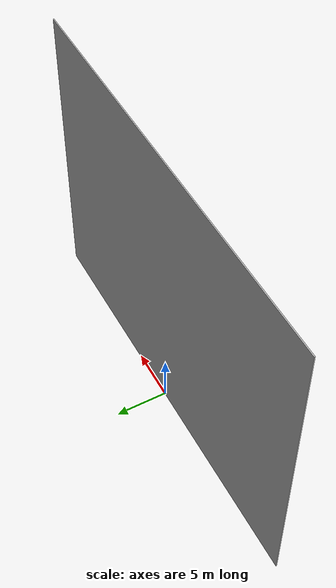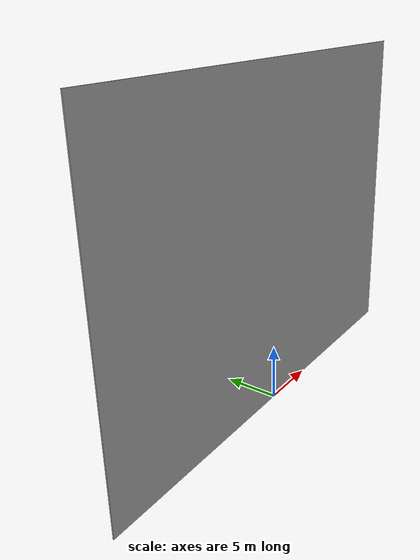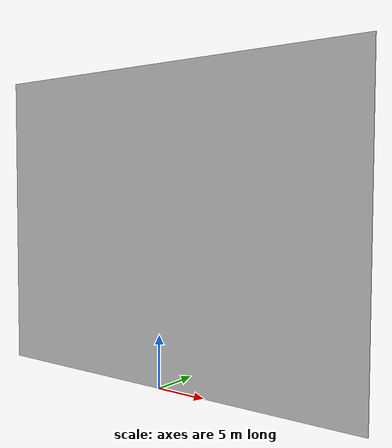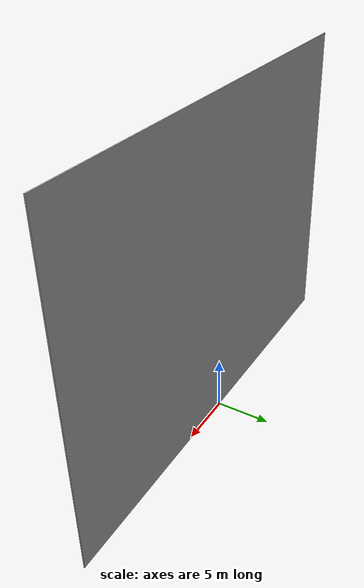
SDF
<?xml version="1.0" ?>
<sdf version="1.5">
  <model name="forest_background">
    <static>1</static>
    <link name="link">
      <pose>0 0 0 0 0 0</pose>
      <inertial>
        <mass>666</mass>
        <inertia>
          <ixx>0.08611666666666669</ixx>
          <ixy>0</ixy>
          <ixz>0</ixz>
          <iyy>0.08611666666666669</iyy>
          <iyz>0</iyz>
          <izz>0.08611666666666669</izz>
        </inertia>
      </inertial>

      <visual name="forest_plane">
        <pose>0 0 15 0 0 0</pose>
        <geometry>
          <box>
            <size>40.0 0.1 30.0</size>
          </box>
        </geometry>
        <material>
          <script>
            <uri>model://forest_background/scripts</uri>
            <uri>model://forest_background/materials/textures</uri>
            <name>ForestBackground/ForestTexture</name>
          </script>
        </material>
      </visual>
    </link>
  </model>
</sdf>
